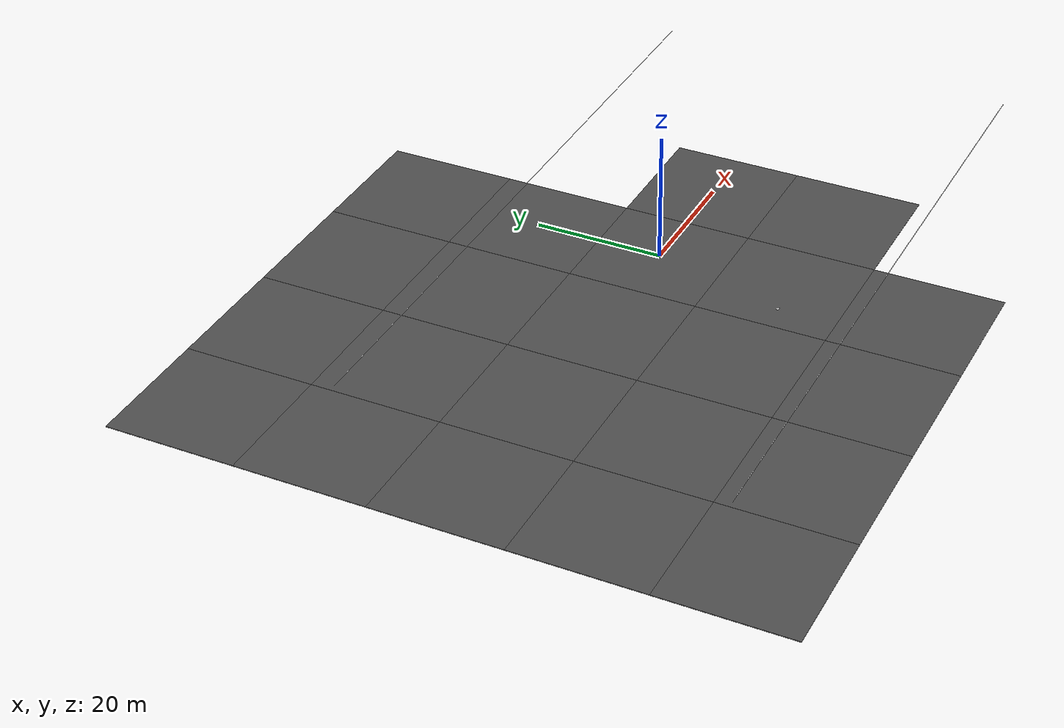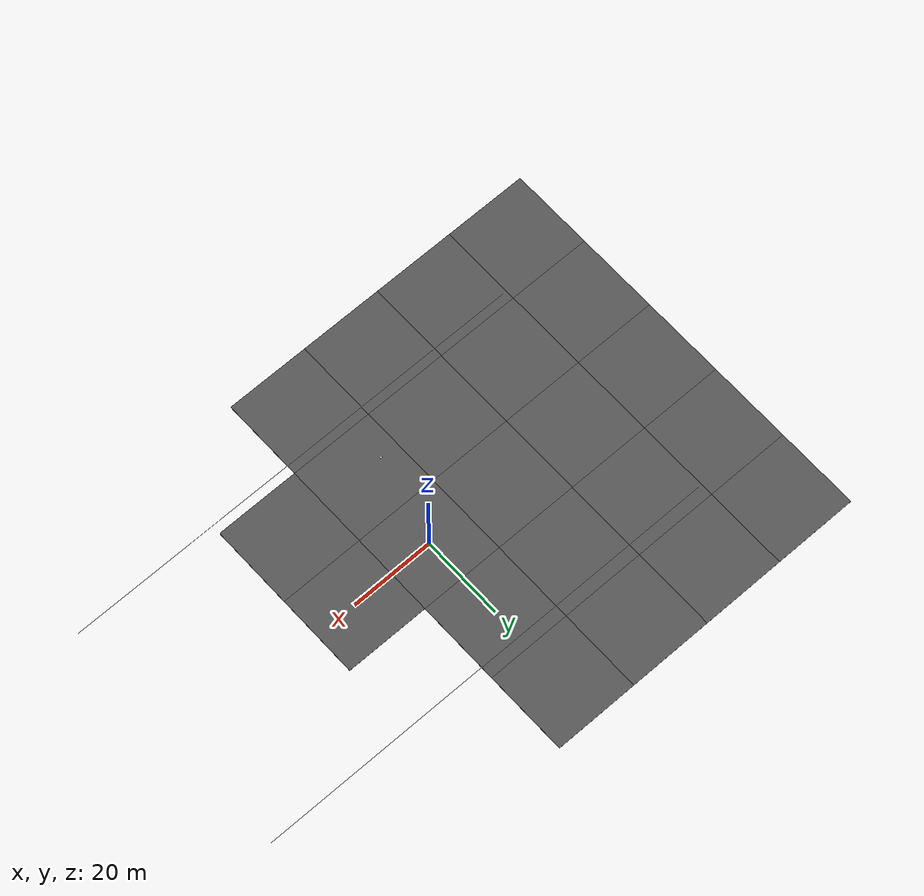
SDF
<sdf version="1.7">
 <world name="default">
  <model name="asphalt_plane">
   <static>1</static>
   <link name="link">
    <collision name="collision"><geometry><box><size>20 20 0.1</size></box></geometry></collision>
    <visual name="visual">
     <cast_shadows>0</cast_shadows>
     <geometry><box><size>20 20 0.1</size></box></geometry>
     <material>
      <script>
       <uri>model://asphalt_plane/materials/scripts</uri>
       <uri>model://asphalt_plane/materials/textures</uri>
       <name>vrc/asphalt</name>
      </script>
     </material>
    </visual>
   </link>
  </model>
  <model name="asphalt_plane_0">
   <static>1</static>
   <link name="link">
    <collision name="collision"><geometry><box><size>20 20 0.1</size></box></geometry></collision>
    <visual name="visual">
     <cast_shadows>0</cast_shadows>
     <geometry><box><size>20 20 0.1</size></box></geometry>
     <material>
      <script>
       <uri>model://asphalt_plane/materials/scripts</uri>
       <uri>model://asphalt_plane/materials/textures</uri>
       <name>vrc/asphalt</name>
      </script>
     </material>
    </visual>
   </link>
   <pose>-20 0 0 0 -0 0</pose>
  </model>
  <model name="asphalt_plane_1">
   <static>1</static>
   <link name="link">
    <collision name="collision"><geometry><box><size>20 20 0.1</size></box></geometry></collision>
    <visual name="visual">
     <cast_shadows>0</cast_shadows>
     <geometry><box><size>20 20 0.1</size></box></geometry>
     <material>
      <script>
       <uri>model://asphalt_plane/materials/scripts</uri>
       <uri>model://asphalt_plane/materials/textures</uri>
       <name>vrc/asphalt</name>
      </script>
     </material>
    </visual>
   </link>
   <pose>-40 0 0 0 -0 0</pose>
  </model>
  <model name="asphalt_plane_2">
   <static>1</static>
   <link name="link">
    <collision name="collision"><geometry><box><size>20 20 0.1</size></box></geometry></collision>
    <visual name="visual">
     <cast_shadows>0</cast_shadows>
     <geometry><box><size>20 20 0.1</size></box></geometry>
     <material>
      <script>
       <uri>model://asphalt_plane/materials/scripts</uri>
       <uri>model://asphalt_plane/materials/textures</uri>
       <name>vrc/asphalt</name>
      </script>
     </material>
    </visual>
   </link>
   <pose>20 0 0 0 -0 0</pose>
  </model>
  <model name="asphalt_plane_4">
   <static>1</static>
   <link name="link">
    <collision name="collision"><geometry><box><size>20 20 0.1</size></box></geometry></collision>
    <visual name="visual">
     <cast_shadows>0</cast_shadows>
     <geometry><box><size>20 20 0.1</size></box></geometry>
     <material>
      <script>
       <uri>model://asphalt_plane/materials/scripts</uri>
       <uri>model://asphalt_plane/materials/textures</uri>
       <name>vrc/asphalt</name>
      </script>
     </material>
    </visual>
   </link>
   <pose>0 -20 0 0 -0 0</pose>
  </model>
  <model name="asphalt_plane_5">
   <static>1</static>
   <link name="link">
    <collision name="collision"><geometry><box><size>20 20 0.1</size></box></geometry></collision>
    <visual name="visual">
     <cast_shadows>0</cast_shadows>
     <geometry><box><size>20 20 0.1</size></box></geometry>
     <material>
      <script>
       <uri>model://asphalt_plane/materials/scripts</uri>
       <uri>model://asphalt_plane/materials/textures</uri>
       <name>vrc/asphalt</name>
      </script>
     </material>
    </visual>
   </link>
   <pose>-20 -20 0 0 -0 0</pose>
  </model>
  <model name="asphalt_plane_6">
   <static>1</static>
   <link name="link">
    <collision name="collision"><geometry><box><size>20 20 0.1</size></box></geometry></collision>
    <visual name="visual">
     <cast_shadows>0</cast_shadows>
     <geometry><box><size>20 20 0.1</size></box></geometry>
     <material>
      <script>
       <uri>model://asphalt_plane/materials/scripts</uri>
       <uri>model://asphalt_plane/materials/textures</uri>
       <name>vrc/asphalt</name>
      </script>
     </material>
    </visual>
   </link>
   <pose>-40 -20 0 0 -0 0</pose>
  </model>
  <model name="asphalt_plane_7">
   <static>1</static>
   <link name="link">
    <collision name="collision"><geometry><box><size>20 20 0.1</size></box></geometry></collision>
    <visual name="visual">
     <cast_shadows>0</cast_shadows>
     <geometry><box><size>20 20 0.1</size></box></geometry>
     <material>
      <script>
       <uri>model://asphalt_plane/materials/scripts</uri>
       <uri>model://asphalt_plane/materials/textures</uri>
       <name>vrc/asphalt</name>
      </script>
     </material>
    </visual>
   </link>
   <pose>20 -20 0 0 -0 0</pose>
  </model>
  <model name="asphalt_plane_9">
   <static>1</static>
   <link name="link">
    <collision name="collision"><geometry><box><size>20 20 0.1</size></box></geometry></collision>
    <visual name="visual">
     <cast_shadows>0</cast_shadows>
     <geometry><box><size>20 20 0.1</size></box></geometry>
     <material>
      <script>
       <uri>model://asphalt_plane/materials/scripts</uri>
       <uri>model://asphalt_plane/materials/textures</uri>
       <name>vrc/asphalt</name>
      </script>
     </material>
    </visual>
   </link>
   <pose>-40 20 0 0 -0 0</pose>
  </model>
  <model name="asphalt_plane_10">
   <static>1</static>
   <link name="link">
    <collision name="collision"><geometry><box><size>20 20 0.1</size></box></geometry></collision>
    <visual name="visual">
     <cast_shadows>0</cast_shadows>
     <geometry><box><size>20 20 0.1</size></box></geometry>
     <material>
      <script>
       <uri>model://asphalt_plane/materials/scripts</uri>
       <uri>model://asphalt_plane/materials/textures</uri>
       <name>vrc/asphalt</name>
      </script>
     </material>
    </visual>
   </link>
   <pose>-20 20 0 0 -0 0</pose>
  </model>
  <model name="asphalt_plane_11">
   <static>1</static>
   <link name="link">
    <collision name="collision"><geometry><box><size>20 20 0.1</size></box></geometry></collision>
    <visual name="visual">
     <cast_shadows>0</cast_shadows>
     <geometry><box><size>20 20 0.1</size></box></geometry>
     <material>
      <script>
       <uri>model://asphalt_plane/materials/scripts</uri>
       <uri>model://asphalt_plane/materials/textures</uri>
       <name>vrc/asphalt</name>
      </script>
     </material>
    </visual>
   </link>
   <pose>0 20 0 0 -0 0</pose>
  </model>
  <model name="yellow_point">
   <static>1</static>
   <link name="link">
    <collision name="collision">
     <geometry><plane><normal>0 0 1</normal><size>0.5 0.5</size></plane></geometry>
     <surface><friction><ode><mu>100</mu><mu2>50</mu2></ode></friction></surface>
    </collision>
    <visual name="visual">
     <cast_shadows>0</cast_shadows>
     <geometry><plane><normal>0 0 1</normal><size>0.5 0.5</size></plane></geometry>
     <material>
      <script>
       <uri>model://yellow_point/materials/scripts</uri>
       <uri>model://yellow_point/materials/textures/</uri>
       <name>MyGroundPlane/Image</name>
      </script>
     </material>
    </visual>
   </link>
   <pose>-5.5 -21 0.06 0 -0 0</pose>
  </model>
  <model name="asphalt_plane_20">
   <static>1</static>
   <link name="link">
    <collision name="collision"><geometry><box><size>20 20 0.1</size></box></geometry></collision>
    <visual name="visual">
     <cast_shadows>0</cast_shadows>
     <geometry><box><size>20 20 0.1</size></box></geometry>
     <material>
      <script>
       <uri>model://asphalt_plane/materials/scripts</uri>
       <uri>model://asphalt_plane/materials/textures</uri>
       <name>vrc/asphalt</name>
      </script>
     </material>
    </visual>
   </link>
   <pose>0 -40 0 0 -0 0</pose>
  </model>
  <model name="asphalt_plane_21">
   <static>1</static>
   <link name="link">
    <collision name="collision"><geometry><box><size>20 20 0.1</size></box></geometry></collision>
    <visual name="visual">
     <cast_shadows>0</cast_shadows>
     <geometry><box><size>20 20 0.1</size></box></geometry>
     <material>
      <script>
       <uri>model://asphalt_plane/materials/scripts</uri>
       <uri>model://asphalt_plane/materials/textures</uri>
       <name>vrc/asphalt</name>
      </script>
     </material>
    </visual>
   </link>
   <pose>-20 -40 0 0 -0 0</pose>
  </model>
  <model name="asphalt_plane_22">
   <static>1</static>
   <link name="link">
    <collision name="collision"><geometry><box><size>20 20 0.1</size></box></geometry></collision>
    <visual name="visual">
     <cast_shadows>0</cast_shadows>
     <geometry><box><size>20 20 0.1</size></box></geometry>
     <material>
      <script>
       <uri>model://asphalt_plane/materials/scripts</uri>
       <uri>model://asphalt_plane/materials/textures</uri>
       <name>vrc/asphalt</name>
      </script>
     </material>
    </visual>
   </link>
   <pose>-40 -40 0 0 -0 0</pose>
  </model>
  <model name="asphalt_plane_23">
   <static>1</static>
   <link name="link">
    <collision name="collision"><geometry><box><size>20 20 0.1</size></box></geometry></collision>
    <visual name="visual">
     <cast_shadows>0</cast_shadows>
     <geometry><box><size>20 20 0.1</size></box></geometry>
     <material>
      <script>
       <uri>model://asphalt_plane/materials/scripts</uri>
       <uri>model://asphalt_plane/materials/textures</uri>
       <name>vrc/asphalt</name>
      </script>
     </material>
    </visual>
   </link>
   <pose>-60 -40 0 0 -0 0</pose>
  </model>
  <model name="asphalt_plane_24">
   <static>1</static>
   <link name="link">
    <collision name="collision"><geometry><box><size>20 20 0.1</size></box></geometry></collision>
    <visual name="visual">
     <cast_shadows>0</cast_shadows>
     <geometry><box><size>20 20 0.1</size></box></geometry>
     <material>
      <script>
       <uri>model://asphalt_plane/materials/scripts</uri>
       <uri>model://asphalt_plane/materials/textures</uri>
       <name>vrc/asphalt</name>
      </script>
     </material>
    </visual>
   </link>
   <pose>-60 -20 0 0 -0 0</pose>
  </model>
  <model name="asphalt_plane_25">
   <static>1</static>
   <link name="link">
    <collision name="collision"><geometry><box><size>20 20 0.1</size></box></geometry></collision>
    <visual name="visual">
     <cast_shadows>0</cast_shadows>
     <geometry><box><size>20 20 0.1</size></box></geometry>
     <material>
      <script>
       <uri>model://asphalt_plane/materials/scripts</uri>
       <uri>model://asphalt_plane/materials/textures</uri>
       <name>vrc/asphalt</name>
      </script>
     </material>
    </visual>
   </link>
   <pose>-60 0 0 0 -0 0</pose>
  </model>
  <model name="asphalt_plane_26">
   <static>1</static>
   <link name="link">
    <collision name="collision"><geometry><box><size>20 20 0.1</size></box></geometry></collision>
    <visual name="visual">
     <cast_shadows>0</cast_shadows>
     <geometry><box><size>20 20 0.1</size></box></geometry>
     <material>
      <script>
       <uri>model://asphalt_plane/materials/scripts</uri>
       <uri>model://asphalt_plane/materials/textures</uri>
       <name>vrc/asphalt</name>
      </script>
     </material>
    </visual>
   </link>
   <pose>-60 20 0 0 -0 0</pose>
  </model>
  <model name="asphalt_plane_27">
   <static>1</static>
   <link name="link">
    <collision name="collision"><geometry><box><size>20 20 0.1</size></box></geometry></collision>
    <visual name="visual">
     <cast_shadows>0</cast_shadows>
     <geometry><box><size>20 20 0.1</size></box></geometry>
     <material>
      <script>
       <uri>model://asphalt_plane/materials/scripts</uri>
       <uri>model://asphalt_plane/materials/textures</uri>
       <name>vrc/asphalt</name>
      </script>
     </material>
    </visual>
   </link>
   <pose>-60 40 0 0 -0 0</pose>
  </model>
  <model name="asphalt_plane_28">
   <static>1</static>
   <link name="link">
    <collision name="collision"><geometry><box><size>20 20 0.1</size></box></geometry></collision>
    <visual name="visual">
     <cast_shadows>0</cast_shadows>
     <geometry><box><size>20 20 0.1</size></box></geometry>
     <material>
      <script>
       <uri>model://asphalt_plane/materials/scripts</uri>
       <uri>model://asphalt_plane/materials/textures</uri>
       <name>vrc/asphalt</name>
      </script>
     </material>
    </visual>
   </link>
   <pose>-40 40 0 0 -0 0</pose>
  </model>
  <model name="asphalt_plane_29">
   <static>1</static>
   <link name="link">
    <collision name="collision"><geometry><box><size>20 20 0.1</size></box></geometry></collision>
    <visual name="visual">
     <cast_shadows>0</cast_shadows>
     <geometry><box><size>20 20 0.1</size></box></geometry>
     <material>
      <script>
       <uri>model://asphalt_plane/materials/scripts</uri>
       <uri>model://asphalt_plane/materials/textures</uri>
       <name>vrc/asphalt</name>
      </script>
     </material>
    </visual>
   </link>
   <pose>-20 40 0 0 -0 0</pose>
  </model>
  <model name="asphalt_plane_30">
   <static>1</static>
   <link name="link">
    <collision name="collision"><geometry><box><size>20 20 0.1</size></box></geometry></collision>
    <visual name="visual">
     <cast_shadows>0</cast_shadows>
     <geometry><box><size>20 20 0.1</size></box></geometry>
     <material>
      <script>
       <uri>model://asphalt_plane/materials/scripts</uri>
       <uri>model://asphalt_plane/materials/textures</uri>
       <name>vrc/asphalt</name>
      </script>
     </material>
    </visual>
   </link>
   <pose>0 40 0 0 -0 0</pose>
  </model>
  <model name="54m_redline_0">
   <static>1</static>
   <link name="link">
    <collision name="collision">
     <geometry><plane><normal>0 0 1</normal><size>59.3 0.1</size></plane></geometry>
     <surface><friction><ode><mu>100</mu><mu2>50</mu2></ode></friction></surface>
    </collision>
    <visual name="visual">
     <cast_shadows>0</cast_shadows>
     <geometry><plane><normal>0 0 1</normal><size>59.3 0.1</size></plane></geometry>
     <material>
      <script>
       <uri>model://54m_redline/materials/scripts</uri>
       <uri>model://54m_redline/materials/textures/</uri>
       <name>MyGroundPlane/Image</name>
      </script>
     </material>
    </visual>
   </link>
   <pose>-49 -2.6 0.06 0 -0 1.5707</pose>
  </model>
  <model name="92m_redline">
   <static>1</static>
   <link name="link">
    <collision name="collision">
     <geometry><plane><normal>0 0 1</normal><size>114.3 0.1</size></plane></geometry>
     <surface><friction><ode><mu>100</mu><mu2>50</mu2></ode></friction></surface>
    </collision>
    <visual name="visual">
     <cast_shadows>0</cast_shadows>
     <geometry><plane><normal>0 0 1</normal><size>114.3 0.1</size></plane></geometry>
     <material>
      <script>
       <uri>model://92m_redline/materials/scripts</uri>
       <uri>model://92m_redline/materials/textures/</uri>
       <name>MyGroundPlane/Image</name>
      </script>
     </material>
    </visual>
   </link>
   <pose>8.2 27 0.06 0 -0 0</pose>
  </model>
  <model name="92m_redline_0">
   <static>1</static>
   <link name="link">
    <collision name="collision">
     <geometry><plane><normal>0 0 1</normal><size>114.3 0.1</size></plane></geometry>
     <surface><friction><ode><mu>100</mu><mu2>50</mu2></ode></friction></surface>
    </collision>
    <visual name="visual">
     <cast_shadows>0</cast_shadows>
     <geometry><plane><normal>0 0 1</normal><size>114.3 0.1</size></plane></geometry>
     <material>
      <script>
       <uri>model://92m_redline/materials/scripts</uri>
       <uri>model://92m_redline/materials/textures/</uri>
       <name>MyGroundPlane/Image</name>
      </script>
     </material>
    </visual>
   </link>
   <pose>8.2 -32.2 0.06 0 -0 0</pose>
  </model>
 </world>
</sdf>
